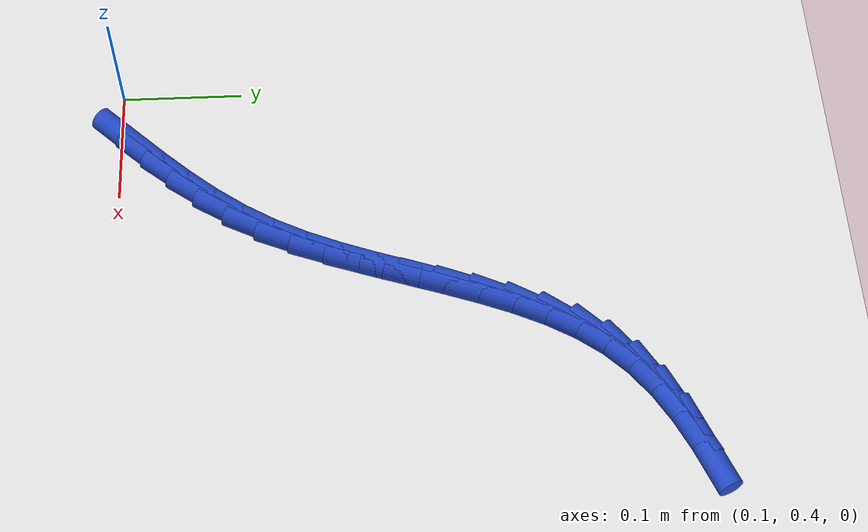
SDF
<sdf version="1.6">
 <world name="default">
  <model name="ground_plane">
   <static>1</static>
   <link name="link">
    <collision name="collision">
     <geometry><plane><normal>0 0 1</normal><size>100 100</size></plane></geometry>
     <surface><friction><ode><mu>100</mu><mu2>50</mu2></ode></friction></surface>
    </collision>
    <visual name="visual">
     <cast_shadows>0</cast_shadows>
     <geometry><plane><normal>0 0 1</normal><size>100 100</size></plane></geometry>
     <material>
      <script><uri>file://media/materials/scripts/gazebo.material</uri><name>Gazebo/WhiteGlow</name></script>
     </material>
    </visual>
   </link>
  </model>
  <model name="line">
   <link name="link_16">
    <pose>0.15319562577297396 0.41177007041868846 0.01 0 1.57 0.8134155494075602</pose>
    <collision name="collision">
     <geometry><cylinder><radius>0.01</radius><length>0.08</length></cylinder></geometry>
    </collision>
    <visual name="visual">
     <material>
      <script><name>Gazebo/Blue</name><uri>file://media/materials/scripts/gazebo.material</uri></script>
     </material>
     <geometry><cylinder><radius>0.01</radius><length>0.08</length></cylinder></geometry>
    </visual>
   </link>
   <link name="link_17">
    <pose>0.1732645987105102 0.4329963306742757 0.01 0 1.57 0.8417021538630504</pose>
    <collision name="collision">
     <geometry><cylinder><radius>0.01</radius><length>0.08</length></cylinder></geometry>
    </collision>
    <visual name="visual">
     <material>
      <script><name>Gazebo/Blue</name><uri>file://media/materials/scripts/gazebo.material</uri></script>
     </material>
     <geometry><cylinder><radius>0.01</radius><length>0.08</length></cylinder></geometry>
    </visual>
   </link>
   <link name="link_18">
    <pose>0.19272468492012035 0.4547811253322432 0.01 0 1.57 0.8867184130049214</pose>
    <collision name="collision">
     <geometry><cylinder><radius>0.01</radius><length>0.08</length></cylinder></geometry>
    </collision>
    <visual name="visual">
     <material>
      <script><name>Gazebo/Blue</name><uri>file://media/materials/scripts/gazebo.material</uri></script>
     </material>
     <geometry><cylinder><radius>0.01</radius><length>0.08</length></cylinder></geometry>
    </visual>
   </link>
   <link name="link_19">
    <pose>0.2111556817157766 0.4773839663614469 0.01 0 1.57 0.9486721330295415</pose>
    <collision name="collision">
     <geometry><cylinder><radius>0.01</radius><length>0.08</length></cylinder></geometry>
    </collision>
    <visual name="visual">
     <material>
      <script><name>Gazebo/Blue</name><uri>file://media/materials/scripts/gazebo.material</uri></script>
     </material>
     <geometry><cylinder><radius>0.01</radius><length>0.08</length></cylinder></geometry>
    </visual>
   </link>
   <link name="link_20">
    <pose>0.22813738641145145 0.5010643657307435 0.01 0 1.57 1.0273711877691036</pose>
    <collision name="collision">
     <geometry><cylinder><radius>0.01</radius><length>0.08</length></cylinder></geometry>
    </collision>
    <visual name="visual">
     <material>
      <script><name>Gazebo/Blue</name><uri>file://media/materials/scripts/gazebo.material</uri></script>
     </material>
     <geometry><cylinder><radius>0.01</radius><length>0.08</length></cylinder></geometry>
    </visual>
   </link>
   <link name="link_21">
    <pose>0.24325009437721926 0.5260814678659033 0.01 0 1.57 1.1123333494085252</pose>
    <collision name="collision">
     <geometry><cylinder><radius>0.01</radius><length>0.08</length></cylinder></geometry>
    </collision>
    <visual name="visual">
     <material>
      <script><name>Gazebo/Blue</name><uri>file://media/materials/scripts/gazebo.material</uri></script>
     </material>
     <geometry><cylinder><radius>0.01</radius><length>0.08</length></cylinder></geometry>
    </visual>
   </link>
   <link name="link_22">
    <pose>0.25630166135879867 0.5525264878323275 0.01 0 1.57 1.1786615076906897</pose>
    <collision name="collision">
     <geometry><cylinder><radius>0.01</radius><length>0.08</length></cylinder></geometry>
    </collision>
    <visual name="visual">
     <material>
      <script><name>Gazebo/Blue</name><uri>file://media/materials/scripts/gazebo.material</uri></script>
     </material>
     <geometry><cylinder><radius>0.01</radius><length>0.08</length></cylinder></geometry>
    </visual>
   </link>
   <link name="link_23">
    <pose>0.26768711545114476 0.5800573338125545 0.01 0 1.57 1.223554133059663</pose>
    <collision name="collision">
     <geometry><cylinder><radius>0.01</radius><length>0.08</length></cylinder></geometry>
    </collision>
    <visual name="visual">
     <material>
      <script><name>Gazebo/Blue</name><uri>file://media/materials/scripts/gazebo.material</uri></script>
     </material>
     <geometry><cylinder><radius>0.01</radius><length>0.08</length></cylinder></geometry>
    </visual>
   </link>
   <link name="link_24">
    <pose>0.2778949136530935 0.6082629676445563 0.01 0 1.57 1.248135445376037</pose>
    <collision name="collision">
     <geometry><cylinder><radius>0.01</radius><length>0.08</length></cylinder></geometry>
    </collision>
    <visual name="visual">
     <material>
      <script><name>Gazebo/Blue</name><uri>file://media/materials/scripts/gazebo.material</uri></script>
     </material>
     <geometry><cylinder><radius>0.01</radius><length>0.08</length></cylinder></geometry>
    </visual>
   </link>
   <link name="link_25">
    <pose>0.28741351296348094 0.6367323511663052 0.01 0 1.57 1.252954392764001</pose>
    <collision name="collision">
     <geometry><cylinder><radius>0.01</radius><length>0.08</length></cylinder></geometry>
    </collision>
    <visual name="visual">
     <material>
      <script><name>Gazebo/Blue</name><uri>file://media/materials/scripts/gazebo.material</uri></script>
     </material>
     <geometry><cylinder><radius>0.01</radius><length>0.08</length></cylinder></geometry>
    </visual>
   </link>
   <link name="link_26">
    <pose>0.296731370381143 0.6650544462157734 0.01 0 1.57 1.2377116555474008</pose>
    <collision name="collision">
     <geometry><cylinder><radius>0.01</radius><length>0.08</length></cylinder></geometry>
    </collision>
    <visual name="visual">
     <material>
      <script><name>Gazebo/Blue</name><uri>file://media/materials/scripts/gazebo.material</uri></script>
     </material>
     <geometry><cylinder><radius>0.01</radius><length>0.08</length></cylinder></geometry>
    </visual>
   </link>
   <link name="link_27">
    <pose>0.30633694290491575 0.6928182146309326 0.01 0 1.57 1.2011473030139892</pose>
    <collision name="collision">
     <geometry><cylinder><radius>0.01</radius><length>0.08</length></cylinder></geometry>
    </collision>
    <visual name="visual">
     <material>
      <script><name>Gazebo/Blue</name><uri>file://media/materials/scripts/gazebo.material</uri></script>
     </material>
     <geometry><cylinder><radius>0.01</radius><length>0.08</length></cylinder></geometry>
    </visual>
   </link>
   <link name="link_28">
    <pose>0.31671868753363513 0.7196126182497558 0.01 0 1.57 1.141089650842048</pose>
    <collision name="collision">
     <geometry><cylinder><radius>0.01</radius><length>0.08</length></cylinder></geometry>
    </collision>
    <visual name="visual">
     <material>
      <script><name>Gazebo/Blue</name><uri>file://media/materials/scripts/gazebo.material</uri></script>
     </material>
     <geometry><cylinder><radius>0.01</radius><length>0.08</length></cylinder></geometry>
    </visual>
   </link>
   <link name="link_29">
    <pose>0.328365061266137 0.7450266189102142 0.01 0 1.57 1.0548198802588418</pose>
    <collision name="collision">
     <geometry><cylinder><radius>0.01</radius><length>0.08</length></cylinder></geometry>
    </collision>
    <visual name="visual">
     <material>
      <script><name>Gazebo/Blue</name><uri>file://media/materials/scripts/gazebo.material</uri></script>
     </material>
     <geometry><cylinder><radius>0.01</radius><length>0.08</length></cylinder></geometry>
    </visual>
   </link>
   <link name="link_30">
    <pose>0.3417645211012577 0.7686491784502809 0.01 0 1.57 0.9400862732517093</pose>
    <collision name="collision">
     <geometry><cylinder><radius>0.01</radius><length>0.08</length></cylinder></geometry>
    </collision>
    <visual name="visual">
     <material>
      <script><name>Gazebo/Blue</name><uri>file://media/materials/scripts/gazebo.material</uri></script>
     </material>
     <geometry><cylinder><radius>0.01</radius><length>0.08</length></cylinder></geometry>
    </visual>
   </link>
   <link name="link_31">
    <pose>0.357405524037833 0.7900692587079277 0.01 0 1.57 0.798821400806224</pose>
    <collision name="collision">
     <geometry><cylinder><radius>0.01</radius><length>0.08</length></cylinder></geometry>
    </collision>
    <visual name="visual">
     <material>
      <script><name>Gazebo/Blue</name><uri>file://media/materials/scripts/gazebo.material</uri></script>
     </material>
     <geometry><cylinder><radius>0.01</radius><length>0.08</length></cylinder></geometry>
    </visual>
   </link>
   <link name="link_32">
    <pose>0.3757433705107839 0.8089061403550023 0.01 0 1.57 0.6600874930666893</pose>
    <collision name="collision">
     <geometry><cylinder><radius>0.01</radius><length>0.08</length></cylinder></geometry>
    </collision>
    <visual name="visual">
     <material>
      <script><name>Gazebo/Blue</name><uri>file://media/materials/scripts/gazebo.material</uri></script>
     </material>
     <geometry><cylinder><radius>0.01</radius><length>0.08</length></cylinder></geometry>
    </visual>
   </link>
   <link name="link_33">
    <pose>0.3967551236232126 0.8252164110850838 0.01 0 1.57 0.5462867310070709</pose>
    <collision name="collision">
     <geometry><cylinder><radius>0.01</radius><length>0.08</length></cylinder></geometry>
    </collision>
    <visual name="visual">
     <material>
      <script><name>Gazebo/Blue</name><uri>file://media/materials/scripts/gazebo.material</uri></script>
     </material>
     <geometry><cylinder><radius>0.01</radius><length>0.08</length></cylinder></geometry>
    </visual>
   </link>
   <link name="link_34">
    <pose>0.4200586355763249 0.8393851261521664 0.01 0 1.57 0.457854576641668</pose>
    <collision name="collision">
     <geometry><cylinder><radius>0.01</radius><length>0.08</length></cylinder></geometry>
    </collision>
    <visual name="visual">
     <material>
      <script><name>Gazebo/Blue</name><uri>file://media/materials/scripts/gazebo.material</uri></script>
     </material>
     <geometry><cylinder><radius>0.01</radius><length>0.08</length></cylinder></geometry>
    </visual>
   </link>
   <link name="link_35">
    <pose>0.4452630202099234 0.8518053312922619 0.01 0 1.57 0.3926762718178306</pose>
    <collision name="collision">
     <geometry><cylinder><radius>0.01</radius><length>0.08</length></cylinder></geometry>
    </collision>
    <visual name="visual">
     <material>
      <script><name>Gazebo/Blue</name><uri>file://media/materials/scripts/gazebo.material</uri></script>
     </material>
     <geometry><cylinder><radius>0.01</radius><length>0.08</length></cylinder></geometry>
    </visual>
   </link>
  </model>
 </world>
</sdf>
